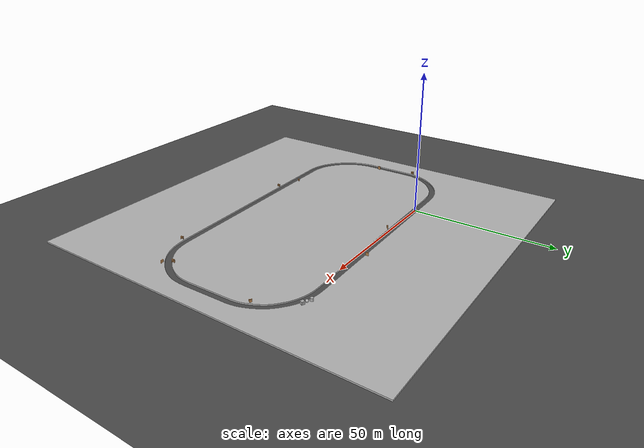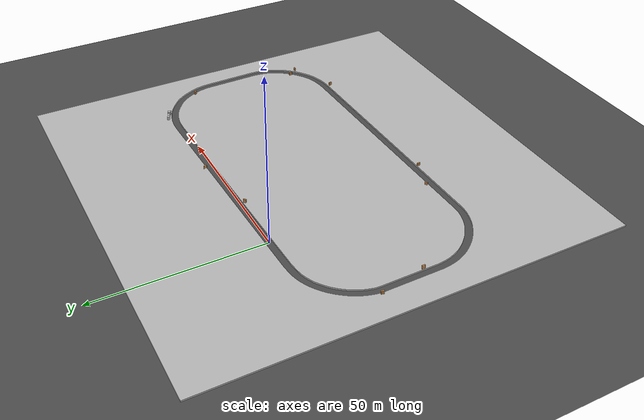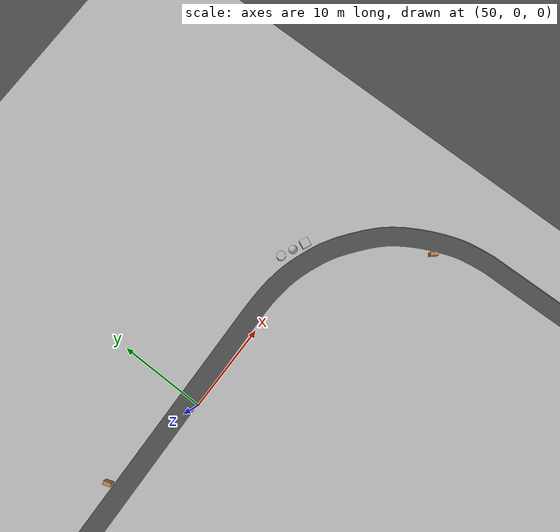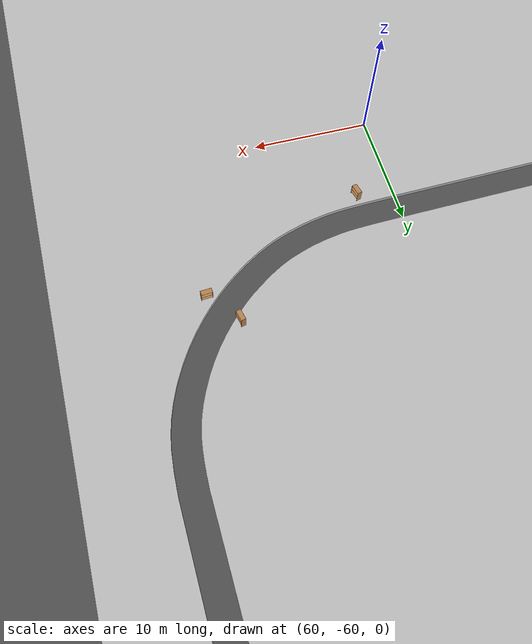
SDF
<sdf version="1.7">
 <world name="default">
  <light name="sun" type="directional">
   <pose>0 0 100 0 -0 0</pose>
   <diffuse>0.8 0.8 0.8 1</diffuse>
   <specular>0.1 0.1 0.1 1</specular>
   <attenuation>
    <range>1000</range>
    <constant>0.9</constant>
    <linear>0.01</linear>
    <quadratic>0.001</quadratic>
   </attenuation>
   <direction>-0.5 0.5 -1</direction>
   <spot><inner_angle>0</inner_angle><outer_angle>0</outer_angle><falloff>0</falloff></spot>
  </light>
  <model name="ground_plane">
   <static>1</static>
   <link name="link">
    <collision name="collision">
     <geometry><plane><normal>0 0 1</normal><size>1000 1000</size></plane></geometry>
     <surface><friction><ode><mu>100</mu><mu2>50</mu2></ode></friction></surface>
    </collision>
    <visual name="visual">
     <cast_shadows>0</cast_shadows>
     <geometry><plane><normal>0 0 1</normal><size>1000 1000</size></plane></geometry>
     <material>
      <script>
       <uri>model://asphalt_plane/materials/scripts</uri>
       <uri>model://asphalt_plane/materials/textures</uri>
       <name>vrc/asphalt</name>
      </script>
     </material>
    </visual>
   </link>
  </model>
  <gravity>0 0 -9.8</gravity>
  <magnetic_field>6e-06 2.3e-05 -4.2e-05</magnetic_field>
  <atmosphere type="adiabatic"/>
  <physics name="default_physics" default="0" type="ode">
   <max_step_size>0.001</max_step_size>
   <real_time_factor>1</real_time_factor>
   <real_time_update_rate>1000</real_time_update_rate>
  </physics>
  <scene><ambient>0.4 0.4 0.4 1</ambient><background>0.7 0.7 0.7 1</background><shadows>0</shadows></scene>
  <spherical_coordinates>
   <surface_model>EARTH_WGS84</surface_model>
   <latitude_deg>0</latitude_deg>
   <longitude_deg>0</longitude_deg>
   <elevation>0</elevation>
   <heading_deg>0</heading_deg>
  </spherical_coordinates>
  <model name="IMS_track">
   <pose>80.9696 31.1068 -1.2 0 -0 0</pose>
   <static>1</static>
   <link name="body">
    <collision name="collision">
     <geometry><mesh><uri>model://IMS_track/IMS_track.dae</uri><scale>1 1 1</scale></mesh></geometry>
    </collision>
    <visual name="visual">
     <geometry><mesh><uri>model://IMS_track/IMS_track.dae</uri><scale>1 1 1</scale></mesh></geometry>
    </visual>
   </link>
  </model>
  <audio><device>default</device></audio>
  <model name="bookshelf_clone_0">
   <static>1</static>
   <link name="link">
    <inertial><mass>1</mass></inertial>
    <collision name="back">
     <pose>0 0.005 0.6 0 -0 0</pose>
     <geometry><box><size>0.9 0.01 1.2</size></box></geometry>
    </collision>
    <visual name="visual1">
     <pose>0 0.005 0.6 0 -0 0</pose>
     <geometry><box><size>0.9 0.01 1.2</size></box></geometry>
     <material>
      <script><uri>file://media/materials/scripts/gazebo.material</uri><name>Gazebo/Wood</name></script>
     </material>
    </visual>
    <collision name="left_side">
     <pose>0.45 -0.195 0.6 0 -0 0</pose>
     <geometry><box><size>0.02 0.4 1.2</size></box></geometry>
    </collision>
    <visual name="visual2">
     <pose>0.45 -0.195 0.6 0 -0 0</pose>
     <geometry><box><size>0.02 0.4 1.2</size></box></geometry>
     <material>
      <script><uri>file://media/materials/scripts/gazebo.material</uri><name>Gazebo/Wood</name></script>
     </material>
    </visual>
    <collision name="right_side">
     <pose>-0.45 -0.195 0.6 0 -0 0</pose>
     <geometry><box><size>0.02 0.4 1.2</size></box></geometry>
    </collision>
    <visual name="visual3">
     <pose>-0.45 -0.195 0.6 0 -0 0</pose>
     <geometry><box><size>0.02 0.4 1.2</size></box></geometry>
     <material>
      <script><uri>file://media/materials/scripts/gazebo.material</uri><name>Gazebo/Wood</name></script>
     </material>
    </visual>
    <collision name="bottom">
     <pose>0 -0.195 0.03 0 -0 0</pose>
     <geometry><box><size>0.88 0.4 0.06</size></box></geometry>
    </collision>
    <visual name="visual4">
     <pose>0 -0.195 0.03 0 -0 0</pose>
     <geometry><box><size>0.88 0.4 0.06</size></box></geometry>
     <material>
      <script><uri>file://media/materials/scripts/gazebo.material</uri><name>Gazebo/Wood</name></script>
     </material>
    </visual>
    <collision name="top">
     <pose>0 -0.195 1.19 0 -0 0</pose>
     <geometry><box><size>0.88 0.4 0.02</size></box></geometry>
    </collision>
    <visual name="visual5">
     <pose>0 -0.195 1.19 0 -0 0</pose>
     <geometry><box><size>0.88 0.4 0.02</size></box></geometry>
     <material>
      <script><uri>file://media/materials/scripts/gazebo.material</uri><name>Gazebo/Wood</name></script>
     </material>
    </visual>
    <collision name="low_shelf">
     <pose>0 -0.195 0.43 0 -0 0</pose>
     <geometry><box><size>0.88 0.4 0.02</size></box></geometry>
    </collision>
    <visual name="visual6">
     <pose>0 -0.195 0.43 0 -0 0</pose>
     <geometry><box><size>0.88 0.4 0.02</size></box></geometry>
     <material>
      <script><uri>file://media/materials/scripts/gazebo.material</uri><name>Gazebo/Wood</name></script>
     </material>
    </visual>
    <collision name="high_shelf">
     <pose>0 -0.195 0.8 0 -0 0</pose>
     <geometry><box><size>0.88 0.4 0.02</size></box></geometry>
    </collision>
    <visual name="visual7">
     <pose>0 -0.195 0.8 0 -0 0</pose>
     <geometry><box><size>0.88 0.4 0.02</size></box></geometry>
     <material>
      <script><uri>file://media/materials/scripts/gazebo.material</uri><name>Gazebo/Wood</name></script>
     </material>
    </visual>
   </link>
   <pose>38.3122 2.58146 0.169627 0 0 -1.23761</pose>
  </model>
  <model name="bookshelf_clone_4">
   <static>1</static>
   <link name="link">
    <inertial><mass>1</mass></inertial>
    <collision name="back">
     <pose>0 0.005 0.6 0 -0 0</pose>
     <geometry><box><size>0.9 0.01 1.2</size></box></geometry>
    </collision>
    <visual name="visual1">
     <pose>0 0.005 0.6 0 -0 0</pose>
     <geometry><box><size>0.9 0.01 1.2</size></box></geometry>
     <material>
      <script><uri>file://media/materials/scripts/gazebo.material</uri><name>Gazebo/Wood</name></script>
     </material>
    </visual>
    <collision name="left_side">
     <pose>0.45 -0.195 0.6 0 -0 0</pose>
     <geometry><box><size>0.02 0.4 1.2</size></box></geometry>
    </collision>
    <visual name="visual2">
     <pose>0.45 -0.195 0.6 0 -0 0</pose>
     <geometry><box><size>0.02 0.4 1.2</size></box></geometry>
     <material>
      <script><uri>file://media/materials/scripts/gazebo.material</uri><name>Gazebo/Wood</name></script>
     </material>
    </visual>
    <collision name="right_side">
     <pose>-0.45 -0.195 0.6 0 -0 0</pose>
     <geometry><box><size>0.02 0.4 1.2</size></box></geometry>
    </collision>
    <visual name="visual3">
     <pose>-0.45 -0.195 0.6 0 -0 0</pose>
     <geometry><box><size>0.02 0.4 1.2</size></box></geometry>
     <material>
      <script><uri>file://media/materials/scripts/gazebo.material</uri><name>Gazebo/Wood</name></script>
     </material>
    </visual>
    <collision name="bottom">
     <pose>0 -0.195 0.03 0 -0 0</pose>
     <geometry><box><size>0.88 0.4 0.06</size></box></geometry>
    </collision>
    <visual name="visual4">
     <pose>0 -0.195 0.03 0 -0 0</pose>
     <geometry><box><size>0.88 0.4 0.06</size></box></geometry>
     <material>
      <script><uri>file://media/materials/scripts/gazebo.material</uri><name>Gazebo/Wood</name></script>
     </material>
    </visual>
    <collision name="top">
     <pose>0 -0.195 1.19 0 -0 0</pose>
     <geometry><box><size>0.88 0.4 0.02</size></box></geometry>
    </collision>
    <visual name="visual5">
     <pose>0 -0.195 1.19 0 -0 0</pose>
     <geometry><box><size>0.88 0.4 0.02</size></box></geometry>
     <material>
      <script><uri>file://media/materials/scripts/gazebo.material</uri><name>Gazebo/Wood</name></script>
     </material>
    </visual>
    <collision name="low_shelf">
     <pose>0 -0.195 0.43 0 -0 0</pose>
     <geometry><box><size>0.88 0.4 0.02</size></box></geometry>
    </collision>
    <visual name="visual6">
     <pose>0 -0.195 0.43 0 -0 0</pose>
     <geometry><box><size>0.88 0.4 0.02</size></box></geometry>
     <material>
      <script><uri>file://media/materials/scripts/gazebo.material</uri><name>Gazebo/Wood</name></script>
     </material>
    </visual>
    <collision name="high_shelf">
     <pose>0 -0.195 0.8 0 -0 0</pose>
     <geometry><box><size>0.88 0.4 0.02</size></box></geometry>
    </collision>
    <visual name="visual7">
     <pose>0 -0.195 0.8 0 -0 0</pose>
     <geometry><box><size>0.88 0.4 0.02</size></box></geometry>
     <material>
      <script><uri>file://media/materials/scripts/gazebo.material</uri><name>Gazebo/Wood</name></script>
     </material>
    </visual>
   </link>
   <pose>78.4176 -10.6179 0.22861 0 -0 2.26799</pose>
  </model>
  <model name="bookshelf_clone_5">
   <static>1</static>
   <link name="link">
    <inertial><mass>1</mass></inertial>
    <collision name="back">
     <pose>0 0.005 0.6 0 -0 0</pose>
     <geometry><box><size>0.9 0.01 1.2</size></box></geometry>
    </collision>
    <visual name="visual1">
     <pose>0 0.005 0.6 0 -0 0</pose>
     <geometry><box><size>0.9 0.01 1.2</size></box></geometry>
     <material>
      <script><uri>file://media/materials/scripts/gazebo.material</uri><name>Gazebo/Wood</name></script>
     </material>
    </visual>
    <collision name="left_side">
     <pose>0.45 -0.195 0.6 0 -0 0</pose>
     <geometry><box><size>0.02 0.4 1.2</size></box></geometry>
    </collision>
    <visual name="visual2">
     <pose>0.45 -0.195 0.6 0 -0 0</pose>
     <geometry><box><size>0.02 0.4 1.2</size></box></geometry>
     <material>
      <script><uri>file://media/materials/scripts/gazebo.material</uri><name>Gazebo/Wood</name></script>
     </material>
    </visual>
    <collision name="right_side">
     <pose>-0.45 -0.195 0.6 0 -0 0</pose>
     <geometry><box><size>0.02 0.4 1.2</size></box></geometry>
    </collision>
    <visual name="visual3">
     <pose>-0.45 -0.195 0.6 0 -0 0</pose>
     <geometry><box><size>0.02 0.4 1.2</size></box></geometry>
     <material>
      <script><uri>file://media/materials/scripts/gazebo.material</uri><name>Gazebo/Wood</name></script>
     </material>
    </visual>
    <collision name="bottom">
     <pose>0 -0.195 0.03 0 -0 0</pose>
     <geometry><box><size>0.88 0.4 0.06</size></box></geometry>
    </collision>
    <visual name="visual4">
     <pose>0 -0.195 0.03 0 -0 0</pose>
     <geometry><box><size>0.88 0.4 0.06</size></box></geometry>
     <material>
      <script><uri>file://media/materials/scripts/gazebo.material</uri><name>Gazebo/Wood</name></script>
     </material>
    </visual>
    <collision name="top">
     <pose>0 -0.195 1.19 0 -0 0</pose>
     <geometry><box><size>0.88 0.4 0.02</size></box></geometry>
    </collision>
    <visual name="visual5">
     <pose>0 -0.195 1.19 0 -0 0</pose>
     <geometry><box><size>0.88 0.4 0.02</size></box></geometry>
     <material>
      <script><uri>file://media/materials/scripts/gazebo.material</uri><name>Gazebo/Wood</name></script>
     </material>
    </visual>
    <collision name="low_shelf">
     <pose>0 -0.195 0.43 0 -0 0</pose>
     <geometry><box><size>0.88 0.4 0.02</size></box></geometry>
    </collision>
    <visual name="visual6">
     <pose>0 -0.195 0.43 0 -0 0</pose>
     <geometry><box><size>0.88 0.4 0.02</size></box></geometry>
     <material>
      <script><uri>file://media/materials/scripts/gazebo.material</uri><name>Gazebo/Wood</name></script>
     </material>
    </visual>
    <collision name="high_shelf">
     <pose>0 -0.195 0.8 0 -0 0</pose>
     <geometry><box><size>0.88 0.4 0.02</size></box></geometry>
    </collision>
    <visual name="visual7">
     <pose>0 -0.195 0.8 0 -0 0</pose>
     <geometry><box><size>0.88 0.4 0.02</size></box></geometry>
     <material>
      <script><uri>file://media/materials/scripts/gazebo.material</uri><name>Gazebo/Wood</name></script>
     </material>
    </visual>
   </link>
   <pose>-27.0141 -30.0759 0.267929 0 0 -1.59889</pose>
  </model>
  <model name="bookshelf_clone_6">
   <static>1</static>
   <link name="link">
    <inertial><mass>1</mass></inertial>
    <collision name="back">
     <pose>0 0.005 0.6 0 -0 0</pose>
     <geometry><box><size>0.9 0.01 1.2</size></box></geometry>
    </collision>
    <visual name="visual1">
     <pose>0 0.005 0.6 0 -0 0</pose>
     <geometry><box><size>0.9 0.01 1.2</size></box></geometry>
     <material>
      <script><uri>file://media/materials/scripts/gazebo.material</uri><name>Gazebo/Wood</name></script>
     </material>
    </visual>
    <collision name="left_side">
     <pose>0.45 -0.195 0.6 0 -0 0</pose>
     <geometry><box><size>0.02 0.4 1.2</size></box></geometry>
    </collision>
    <visual name="visual2">
     <pose>0.45 -0.195 0.6 0 -0 0</pose>
     <geometry><box><size>0.02 0.4 1.2</size></box></geometry>
     <material>
      <script><uri>file://media/materials/scripts/gazebo.material</uri><name>Gazebo/Wood</name></script>
     </material>
    </visual>
    <collision name="right_side">
     <pose>-0.45 -0.195 0.6 0 -0 0</pose>
     <geometry><box><size>0.02 0.4 1.2</size></box></geometry>
    </collision>
    <visual name="visual3">
     <pose>-0.45 -0.195 0.6 0 -0 0</pose>
     <geometry><box><size>0.02 0.4 1.2</size></box></geometry>
     <material>
      <script><uri>file://media/materials/scripts/gazebo.material</uri><name>Gazebo/Wood</name></script>
     </material>
    </visual>
    <collision name="bottom">
     <pose>0 -0.195 0.03 0 -0 0</pose>
     <geometry><box><size>0.88 0.4 0.06</size></box></geometry>
    </collision>
    <visual name="visual4">
     <pose>0 -0.195 0.03 0 -0 0</pose>
     <geometry><box><size>0.88 0.4 0.06</size></box></geometry>
     <material>
      <script><uri>file://media/materials/scripts/gazebo.material</uri><name>Gazebo/Wood</name></script>
     </material>
    </visual>
    <collision name="top">
     <pose>0 -0.195 1.19 0 -0 0</pose>
     <geometry><box><size>0.88 0.4 0.02</size></box></geometry>
    </collision>
    <visual name="visual5">
     <pose>0 -0.195 1.19 0 -0 0</pose>
     <geometry><box><size>0.88 0.4 0.02</size></box></geometry>
     <material>
      <script><uri>file://media/materials/scripts/gazebo.material</uri><name>Gazebo/Wood</name></script>
     </material>
    </visual>
    <collision name="low_shelf">
     <pose>0 -0.195 0.43 0 -0 0</pose>
     <geometry><box><size>0.88 0.4 0.02</size></box></geometry>
    </collision>
    <visual name="visual6">
     <pose>0 -0.195 0.43 0 -0 0</pose>
     <geometry><box><size>0.88 0.4 0.02</size></box></geometry>
     <material>
      <script><uri>file://media/materials/scripts/gazebo.material</uri><name>Gazebo/Wood</name></script>
     </material>
    </visual>
    <collision name="high_shelf">
     <pose>0 -0.195 0.8 0 -0 0</pose>
     <geometry><box><size>0.88 0.4 0.02</size></box></geometry>
    </collision>
    <visual name="visual7">
     <pose>0 -0.195 0.8 0 -0 0</pose>
     <geometry><box><size>0.88 0.4 0.02</size></box></geometry>
     <material>
      <script><uri>file://media/materials/scripts/gazebo.material</uri><name>Gazebo/Wood</name></script>
     </material>
    </visual>
   </link>
   <pose>-30.338 -16.1586 0.120744 0 -0 1.37454</pose>
  </model>
  <model name="bookshelf_clone_clone">
   <static>1</static>
   <link name="link">
    <inertial><mass>1</mass></inertial>
    <collision name="back">
     <pose>0 0.005 0.6 0 -0 0</pose>
     <geometry><box><size>0.9 0.01 1.2</size></box></geometry>
    </collision>
    <visual name="visual1">
     <pose>0 0.005 0.6 0 -0 0</pose>
     <geometry><box><size>0.9 0.01 1.2</size></box></geometry>
     <material>
      <script><uri>file://media/materials/scripts/gazebo.material</uri><name>Gazebo/Wood</name></script>
     </material>
    </visual>
    <collision name="left_side">
     <pose>0.45 -0.195 0.6 0 -0 0</pose>
     <geometry><box><size>0.02 0.4 1.2</size></box></geometry>
    </collision>
    <visual name="visual2">
     <pose>0.45 -0.195 0.6 0 -0 0</pose>
     <geometry><box><size>0.02 0.4 1.2</size></box></geometry>
     <material>
      <script><uri>file://media/materials/scripts/gazebo.material</uri><name>Gazebo/Wood</name></script>
     </material>
    </visual>
    <collision name="right_side">
     <pose>-0.45 -0.195 0.6 0 -0 0</pose>
     <geometry><box><size>0.02 0.4 1.2</size></box></geometry>
    </collision>
    <visual name="visual3">
     <pose>-0.45 -0.195 0.6 0 -0 0</pose>
     <geometry><box><size>0.02 0.4 1.2</size></box></geometry>
     <material>
      <script><uri>file://media/materials/scripts/gazebo.material</uri><name>Gazebo/Wood</name></script>
     </material>
    </visual>
    <collision name="bottom">
     <pose>0 -0.195 0.03 0 -0 0</pose>
     <geometry><box><size>0.88 0.4 0.06</size></box></geometry>
    </collision>
    <visual name="visual4">
     <pose>0 -0.195 0.03 0 -0 0</pose>
     <geometry><box><size>0.88 0.4 0.06</size></box></geometry>
     <material>
      <script><uri>file://media/materials/scripts/gazebo.material</uri><name>Gazebo/Wood</name></script>
     </material>
    </visual>
    <collision name="top">
     <pose>0 -0.195 1.19 0 -0 0</pose>
     <geometry><box><size>0.88 0.4 0.02</size></box></geometry>
    </collision>
    <visual name="visual5">
     <pose>0 -0.195 1.19 0 -0 0</pose>
     <geometry><box><size>0.88 0.4 0.02</size></box></geometry>
     <material>
      <script><uri>file://media/materials/scripts/gazebo.material</uri><name>Gazebo/Wood</name></script>
     </material>
    </visual>
    <collision name="low_shelf">
     <pose>0 -0.195 0.43 0 -0 0</pose>
     <geometry><box><size>0.88 0.4 0.02</size></box></geometry>
    </collision>
    <visual name="visual6">
     <pose>0 -0.195 0.43 0 -0 0</pose>
     <geometry><box><size>0.88 0.4 0.02</size></box></geometry>
     <material>
      <script><uri>file://media/materials/scripts/gazebo.material</uri><name>Gazebo/Wood</name></script>
     </material>
    </visual>
    <collision name="high_shelf">
     <pose>0 -0.195 0.8 0 -0 0</pose>
     <geometry><box><size>0.88 0.4 0.02</size></box></geometry>
    </collision>
    <visual name="visual7">
     <pose>0 -0.195 0.8 0 -0 0</pose>
     <geometry><box><size>0.88 0.4 0.02</size></box></geometry>
     <material>
      <script><uri>file://media/materials/scripts/gazebo.material</uri><name>Gazebo/Wood</name></script>
     </material>
    </visual>
   </link>
   <pose>18.1974 -1.03454 0.1438 0 -0 0.619384</pose>
  </model>
  <model name="bookshelf_clone_8_clone">
   <static>1</static>
   <link name="link">
    <inertial><mass>1</mass></inertial>
    <collision name="back">
     <pose>0 0.005 0.6 0 -0 0</pose>
     <geometry><box><size>0.9 0.01 1.2</size></box></geometry>
    </collision>
    <visual name="visual1">
     <pose>0 0.005 0.6 0 -0 0</pose>
     <geometry><box><size>0.9 0.01 1.2</size></box></geometry>
     <material>
      <script><uri>file://media/materials/scripts/gazebo.material</uri><name>Gazebo/Wood</name></script>
     </material>
    </visual>
    <collision name="left_side">
     <pose>0.45 -0.195 0.6 0 -0 0</pose>
     <geometry><box><size>0.02 0.4 1.2</size></box></geometry>
    </collision>
    <visual name="visual2">
     <pose>0.45 -0.195 0.6 0 -0 0</pose>
     <geometry><box><size>0.02 0.4 1.2</size></box></geometry>
     <material>
      <script><uri>file://media/materials/scripts/gazebo.material</uri><name>Gazebo/Wood</name></script>
     </material>
    </visual>
    <collision name="right_side">
     <pose>-0.45 -0.195 0.6 0 -0 0</pose>
     <geometry><box><size>0.02 0.4 1.2</size></box></geometry>
    </collision>
    <visual name="visual3">
     <pose>-0.45 -0.195 0.6 0 -0 0</pose>
     <geometry><box><size>0.02 0.4 1.2</size></box></geometry>
     <material>
      <script><uri>file://media/materials/scripts/gazebo.material</uri><name>Gazebo/Wood</name></script>
     </material>
    </visual>
    <collision name="bottom">
     <pose>0 -0.195 0.03 0 -0 0</pose>
     <geometry><box><size>0.88 0.4 0.06</size></box></geometry>
    </collision>
    <visual name="visual4">
     <pose>0 -0.195 0.03 0 -0 0</pose>
     <geometry><box><size>0.88 0.4 0.06</size></box></geometry>
     <material>
      <script><uri>file://media/materials/scripts/gazebo.material</uri><name>Gazebo/Wood</name></script>
     </material>
    </visual>
    <collision name="top">
     <pose>0 -0.195 1.19 0 -0 0</pose>
     <geometry><box><size>0.88 0.4 0.02</size></box></geometry>
    </collision>
    <visual name="visual5">
     <pose>0 -0.195 1.19 0 -0 0</pose>
     <geometry><box><size>0.88 0.4 0.02</size></box></geometry>
     <material>
      <script><uri>file://media/materials/scripts/gazebo.material</uri><name>Gazebo/Wood</name></script>
     </material>
    </visual>
    <collision name="low_shelf">
     <pose>0 -0.195 0.43 0 -0 0</pose>
     <geometry><box><size>0.88 0.4 0.02</size></box></geometry>
    </collision>
    <visual name="visual6">
     <pose>0 -0.195 0.43 0 -0 0</pose>
     <geometry><box><size>0.88 0.4 0.02</size></box></geometry>
     <material>
      <script><uri>file://media/materials/scripts/gazebo.material</uri><name>Gazebo/Wood</name></script>
     </material>
    </visual>
    <collision name="high_shelf">
     <pose>0 -0.195 0.8 0 -0 0</pose>
     <geometry><box><size>0.88 0.4 0.02</size></box></geometry>
    </collision>
    <visual name="visual7">
     <pose>0 -0.195 0.8 0 -0 0</pose>
     <geometry><box><size>0.88 0.4 0.02</size></box></geometry>
     <material>
      <script><uri>file://media/materials/scripts/gazebo.material</uri><name>Gazebo/Wood</name></script>
     </material>
    </visual>
   </link>
   <pose>10.6115 -53.6261 -0.05153 0 -0 1.52513</pose>
  </model>
  <model name="bookshelf_clone_8_clone_clone">
   <static>1</static>
   <link name="link">
    <inertial><mass>1</mass></inertial>
    <collision name="back">
     <pose>0 0.005 0.6 0 -0 0</pose>
     <geometry><box><size>0.9 0.01 1.2</size></box></geometry>
    </collision>
    <visual name="visual1">
     <pose>0 0.005 0.6 0 -0 0</pose>
     <geometry><box><size>0.9 0.01 1.2</size></box></geometry>
     <material>
      <script><uri>file://media/materials/scripts/gazebo.material</uri><name>Gazebo/Wood</name></script>
     </material>
    </visual>
    <collision name="left_side">
     <pose>0.45 -0.195 0.6 0 -0 0</pose>
     <geometry><box><size>0.02 0.4 1.2</size></box></geometry>
    </collision>
    <visual name="visual2">
     <pose>0.45 -0.195 0.6 0 -0 0</pose>
     <geometry><box><size>0.02 0.4 1.2</size></box></geometry>
     <material>
      <script><uri>file://media/materials/scripts/gazebo.material</uri><name>Gazebo/Wood</name></script>
     </material>
    </visual>
    <collision name="right_side">
     <pose>-0.45 -0.195 0.6 0 -0 0</pose>
     <geometry><box><size>0.02 0.4 1.2</size></box></geometry>
    </collision>
    <visual name="visual3">
     <pose>-0.45 -0.195 0.6 0 -0 0</pose>
     <geometry><box><size>0.02 0.4 1.2</size></box></geometry>
     <material>
      <script><uri>file://media/materials/scripts/gazebo.material</uri><name>Gazebo/Wood</name></script>
     </material>
    </visual>
    <collision name="bottom">
     <pose>0 -0.195 0.03 0 -0 0</pose>
     <geometry><box><size>0.88 0.4 0.06</size></box></geometry>
    </collision>
    <visual name="visual4">
     <pose>0 -0.195 0.03 0 -0 0</pose>
     <geometry><box><size>0.88 0.4 0.06</size></box></geometry>
     <material>
      <script><uri>file://media/materials/scripts/gazebo.material</uri><name>Gazebo/Wood</name></script>
     </material>
    </visual>
    <collision name="top">
     <pose>0 -0.195 1.19 0 -0 0</pose>
     <geometry><box><size>0.88 0.4 0.02</size></box></geometry>
    </collision>
    <visual name="visual5">
     <pose>0 -0.195 1.19 0 -0 0</pose>
     <geometry><box><size>0.88 0.4 0.02</size></box></geometry>
     <material>
      <script><uri>file://media/materials/scripts/gazebo.material</uri><name>Gazebo/Wood</name></script>
     </material>
    </visual>
    <collision name="low_shelf">
     <pose>0 -0.195 0.43 0 -0 0</pose>
     <geometry><box><size>0.88 0.4 0.02</size></box></geometry>
    </collision>
    <visual name="visual6">
     <pose>0 -0.195 0.43 0 -0 0</pose>
     <geometry><box><size>0.88 0.4 0.02</size></box></geometry>
     <material>
      <script><uri>file://media/materials/scripts/gazebo.material</uri><name>Gazebo/Wood</name></script>
     </material>
    </visual>
    <collision name="high_shelf">
     <pose>0 -0.195 0.8 0 -0 0</pose>
     <geometry><box><size>0.88 0.4 0.02</size></box></geometry>
    </collision>
    <visual name="visual7">
     <pose>0 -0.195 0.8 0 -0 0</pose>
     <geometry><box><size>0.88 0.4 0.02</size></box></geometry>
     <material>
      <script><uri>file://media/materials/scripts/gazebo.material</uri><name>Gazebo/Wood</name></script>
     </material>
    </visual>
   </link>
   <pose>1.79634 -50.2741 -0.129444 0 -0 0.799784</pose>
  </model>
  <model name="textured_shapes">
   <pose>69.6011 2.12384 0.799991 0 -0 1.14441</pose>
   <link name="box">
    <pose>0 -1.5 0 0 -0 0</pose>
    <collision name="collision"><geometry><box><size>1 1 1</size></box></geometry></collision>
    <visual name="visual">
     <geometry><box><size>1 1 1</size></box></geometry>
     <material>
      <script>
       <uri>model://textured_shapes/materials/scripts</uri>
       <uri>model://textured_shapes/materials/textures</uri>
       <name>TexturedShape/Squares</name>
      </script>
     </material>
    </visual>
    <inertial>
     <inertia><ixx>1</ixx><ixy>0</ixy><ixz>0</ixz><iyy>1</iyy><iyz>0</iyz><izz>1</izz></inertia>
     <mass>1</mass>
    </inertial>
   </link>
   <link name="sphere">
    <collision name="collision"><geometry><sphere><radius>0.5</radius></sphere></geometry></collision>
    <visual name="visual">
     <geometry><sphere><radius>0.5</radius></sphere></geometry>
     <material>
      <script>
       <uri>model://textured_shapes/materials/scripts</uri>
       <uri>model://textured_shapes/materials/textures</uri>
       <name>TexturedShape/Squares</name>
      </script>
     </material>
    </visual>
    <inertial>
     <inertia><ixx>1</ixx><ixy>0</ixy><ixz>0</ixz><iyy>1</iyy><iyz>0</iyz><izz>1</izz></inertia>
     <mass>1</mass>
    </inertial>
   </link>
   <link name="cylinder">
    <pose>0 1.5 0 0 -0 0</pose>
    <collision name="collision">
     <geometry><cylinder><radius>0.5</radius><length>1</length></cylinder></geometry>
    </collision>
    <visual name="visual">
     <geometry><cylinder><radius>0.5</radius><length>1</length></cylinder></geometry>
     <material>
      <script>
       <uri>model://textured_shapes/materials/scripts</uri>
       <uri>model://textured_shapes/materials/textures</uri>
       <name>TexturedShape/Squares</name>
      </script>
     </material>
    </visual>
    <inertial>
     <inertia><ixx>1</ixx><ixy>0</ixy><ixz>0</ixz><iyy>1</iyy><iyz>0</iyz><izz>1</izz></inertia>
     <mass>1</mass>
    </inertial>
   </link>
  </model>
  <model name="bookshelf_clone_10_clone_clone">
   <static>1</static>
   <link name="link">
    <inertial><mass>1</mass></inertial>
    <collision name="back">
     <pose>0 0.005 0.6 0 -0 0</pose>
     <geometry><box><size>0.9 0.01 1.2</size></box></geometry>
    </collision>
    <visual name="visual1">
     <pose>0 0.005 0.6 0 -0 0</pose>
     <geometry><box><size>0.9 0.01 1.2</size></box></geometry>
     <material>
      <script><uri>file://media/materials/scripts/gazebo.material</uri><name>Gazebo/Wood</name></script>
     </material>
    </visual>
    <collision name="left_side">
     <pose>0.45 -0.195 0.6 0 -0 0</pose>
     <geometry><box><size>0.02 0.4 1.2</size></box></geometry>
    </collision>
    <visual name="visual2">
     <pose>0.45 -0.195 0.6 0 -0 0</pose>
     <geometry><box><size>0.02 0.4 1.2</size></box></geometry>
     <material>
      <script><uri>file://media/materials/scripts/gazebo.material</uri><name>Gazebo/Wood</name></script>
     </material>
    </visual>
    <collision name="right_side">
     <pose>-0.45 -0.195 0.6 0 -0 0</pose>
     <geometry><box><size>0.02 0.4 1.2</size></box></geometry>
    </collision>
    <visual name="visual3">
     <pose>-0.45 -0.195 0.6 0 -0 0</pose>
     <geometry><box><size>0.02 0.4 1.2</size></box></geometry>
     <material>
      <script><uri>file://media/materials/scripts/gazebo.material</uri><name>Gazebo/Wood</name></script>
     </material>
    </visual>
    <collision name="bottom">
     <pose>0 -0.195 0.03 0 -0 0</pose>
     <geometry><box><size>0.88 0.4 0.06</size></box></geometry>
    </collision>
    <visual name="visual4">
     <pose>0 -0.195 0.03 0 -0 0</pose>
     <geometry><box><size>0.88 0.4 0.06</size></box></geometry>
     <material>
      <script><uri>file://media/materials/scripts/gazebo.material</uri><name>Gazebo/Wood</name></script>
     </material>
    </visual>
    <collision name="top">
     <pose>0 -0.195 1.19 0 -0 0</pose>
     <geometry><box><size>0.88 0.4 0.02</size></box></geometry>
    </collision>
    <visual name="visual5">
     <pose>0 -0.195 1.19 0 -0 0</pose>
     <geometry><box><size>0.88 0.4 0.02</size></box></geometry>
     <material>
      <script><uri>file://media/materials/scripts/gazebo.material</uri><name>Gazebo/Wood</name></script>
     </material>
    </visual>
    <collision name="low_shelf">
     <pose>0 -0.195 0.43 0 -0 0</pose>
     <geometry><box><size>0.88 0.4 0.02</size></box></geometry>
    </collision>
    <visual name="visual6">
     <pose>0 -0.195 0.43 0 -0 0</pose>
     <geometry><box><size>0.88 0.4 0.02</size></box></geometry>
     <material>
      <script><uri>file://media/materials/scripts/gazebo.material</uri><name>Gazebo/Wood</name></script>
     </material>
    </visual>
    <collision name="high_shelf">
     <pose>0 -0.195 0.8 0 -0 0</pose>
     <geometry><box><size>0.88 0.4 0.02</size></box></geometry>
    </collision>
    <visual name="visual7">
     <pose>0 -0.195 0.8 0 -0 0</pose>
     <geometry><box><size>0.88 0.4 0.02</size></box></geometry>
     <material>
      <script><uri>file://media/materials/scripts/gazebo.material</uri><name>Gazebo/Wood</name></script>
     </material>
    </visual>
   </link>
   <pose>77.4873 -46.8361 0.077997 0 0 -3.07227</pose>
  </model>
  <model name="bookshelf_clone_11_clone_clone">
   <static>1</static>
   <link name="link">
    <inertial><mass>1</mass></inertial>
    <collision name="back">
     <pose>0 0.005 0.6 0 -0 0</pose>
     <geometry><box><size>0.9 0.01 1.2</size></box></geometry>
    </collision>
    <visual name="visual1">
     <pose>0 0.005 0.6 0 -0 0</pose>
     <geometry><box><size>0.9 0.01 1.2</size></box></geometry>
     <material>
      <script><uri>file://media/materials/scripts/gazebo.material</uri><name>Gazebo/Wood</name></script>
     </material>
    </visual>
    <collision name="left_side">
     <pose>0.45 -0.195 0.6 0 -0 0</pose>
     <geometry><box><size>0.02 0.4 1.2</size></box></geometry>
    </collision>
    <visual name="visual2">
     <pose>0.45 -0.195 0.6 0 -0 0</pose>
     <geometry><box><size>0.02 0.4 1.2</size></box></geometry>
     <material>
      <script><uri>file://media/materials/scripts/gazebo.material</uri><name>Gazebo/Wood</name></script>
     </material>
    </visual>
    <collision name="right_side">
     <pose>-0.45 -0.195 0.6 0 -0 0</pose>
     <geometry><box><size>0.02 0.4 1.2</size></box></geometry>
    </collision>
    <visual name="visual3">
     <pose>-0.45 -0.195 0.6 0 -0 0</pose>
     <geometry><box><size>0.02 0.4 1.2</size></box></geometry>
     <material>
      <script><uri>file://media/materials/scripts/gazebo.material</uri><name>Gazebo/Wood</name></script>
     </material>
    </visual>
    <collision name="bottom">
     <pose>0 -0.195 0.03 0 -0 0</pose>
     <geometry><box><size>0.88 0.4 0.06</size></box></geometry>
    </collision>
    <visual name="visual4">
     <pose>0 -0.195 0.03 0 -0 0</pose>
     <geometry><box><size>0.88 0.4 0.06</size></box></geometry>
     <material>
      <script><uri>file://media/materials/scripts/gazebo.material</uri><name>Gazebo/Wood</name></script>
     </material>
    </visual>
    <collision name="top">
     <pose>0 -0.195 1.19 0 -0 0</pose>
     <geometry><box><size>0.88 0.4 0.02</size></box></geometry>
    </collision>
    <visual name="visual5">
     <pose>0 -0.195 1.19 0 -0 0</pose>
     <geometry><box><size>0.88 0.4 0.02</size></box></geometry>
     <material>
      <script><uri>file://media/materials/scripts/gazebo.material</uri><name>Gazebo/Wood</name></script>
     </material>
    </visual>
    <collision name="low_shelf">
     <pose>0 -0.195 0.43 0 -0 0</pose>
     <geometry><box><size>0.88 0.4 0.02</size></box></geometry>
    </collision>
    <visual name="visual6">
     <pose>0 -0.195 0.43 0 -0 0</pose>
     <geometry><box><size>0.88 0.4 0.02</size></box></geometry>
     <material>
      <script><uri>file://media/materials/scripts/gazebo.material</uri><name>Gazebo/Wood</name></script>
     </material>
    </visual>
    <collision name="high_shelf">
     <pose>0 -0.195 0.8 0 -0 0</pose>
     <geometry><box><size>0.88 0.4 0.02</size></box></geometry>
    </collision>
    <visual name="visual7">
     <pose>0 -0.195 0.8 0 -0 0</pose>
     <geometry><box><size>0.88 0.4 0.02</size></box></geometry>
     <material>
      <script><uri>file://media/materials/scripts/gazebo.material</uri><name>Gazebo/Wood</name></script>
     </material>
    </visual>
   </link>
   <pose>75.2231 -44.0463 0.193317 0 -0 1.79332</pose>
  </model>
  <model name="bookshelf_clone_9_clone_clone">
   <static>1</static>
   <link name="link">
    <inertial><mass>1</mass></inertial>
    <collision name="back">
     <pose>0 0.005 0.6 0 -0 0</pose>
     <geometry><box><size>0.9 0.01 1.2</size></box></geometry>
    </collision>
    <visual name="visual1">
     <pose>0 0.005 0.6 0 -0 0</pose>
     <geometry><box><size>0.9 0.01 1.2</size></box></geometry>
     <material>
      <script><uri>file://media/materials/scripts/gazebo.material</uri><name>Gazebo/Wood</name></script>
     </material>
    </visual>
    <collision name="left_side">
     <pose>0.45 -0.195 0.6 0 -0 0</pose>
     <geometry><box><size>0.02 0.4 1.2</size></box></geometry>
    </collision>
    <visual name="visual2">
     <pose>0.45 -0.195 0.6 0 -0 0</pose>
     <geometry><box><size>0.02 0.4 1.2</size></box></geometry>
     <material>
      <script><uri>file://media/materials/scripts/gazebo.material</uri><name>Gazebo/Wood</name></script>
     </material>
    </visual>
    <collision name="right_side">
     <pose>-0.45 -0.195 0.6 0 -0 0</pose>
     <geometry><box><size>0.02 0.4 1.2</size></box></geometry>
    </collision>
    <visual name="visual3">
     <pose>-0.45 -0.195 0.6 0 -0 0</pose>
     <geometry><box><size>0.02 0.4 1.2</size></box></geometry>
     <material>
      <script><uri>file://media/materials/scripts/gazebo.material</uri><name>Gazebo/Wood</name></script>
     </material>
    </visual>
    <collision name="bottom">
     <pose>0 -0.195 0.03 0 -0 0</pose>
     <geometry><box><size>0.88 0.4 0.06</size></box></geometry>
    </collision>
    <visual name="visual4">
     <pose>0 -0.195 0.03 0 -0 0</pose>
     <geometry><box><size>0.88 0.4 0.06</size></box></geometry>
     <material>
      <script><uri>file://media/materials/scripts/gazebo.material</uri><name>Gazebo/Wood</name></script>
     </material>
    </visual>
    <collision name="top">
     <pose>0 -0.195 1.19 0 -0 0</pose>
     <geometry><box><size>0.88 0.4 0.02</size></box></geometry>
    </collision>
    <visual name="visual5">
     <pose>0 -0.195 1.19 0 -0 0</pose>
     <geometry><box><size>0.88 0.4 0.02</size></box></geometry>
     <material>
      <script><uri>file://media/materials/scripts/gazebo.material</uri><name>Gazebo/Wood</name></script>
     </material>
    </visual>
    <collision name="low_shelf">
     <pose>0 -0.195 0.43 0 -0 0</pose>
     <geometry><box><size>0.88 0.4 0.02</size></box></geometry>
    </collision>
    <visual name="visual6">
     <pose>0 -0.195 0.43 0 -0 0</pose>
     <geometry><box><size>0.88 0.4 0.02</size></box></geometry>
     <material>
      <script><uri>file://media/materials/scripts/gazebo.material</uri><name>Gazebo/Wood</name></script>
     </material>
    </visual>
    <collision name="high_shelf">
     <pose>0 -0.195 0.8 0 -0 0</pose>
     <geometry><box><size>0.88 0.4 0.02</size></box></geometry>
    </collision>
    <visual name="visual7">
     <pose>0 -0.195 0.8 0 -0 0</pose>
     <geometry><box><size>0.88 0.4 0.02</size></box></geometry>
     <material>
      <script><uri>file://media/materials/scripts/gazebo.material</uri><name>Gazebo/Wood</name></script>
     </material>
    </visual>
   </link>
   <pose>63.0594 -52.8304 0.130584 0 -0 1.80033</pose>
  </model>
 </world>
</sdf>
